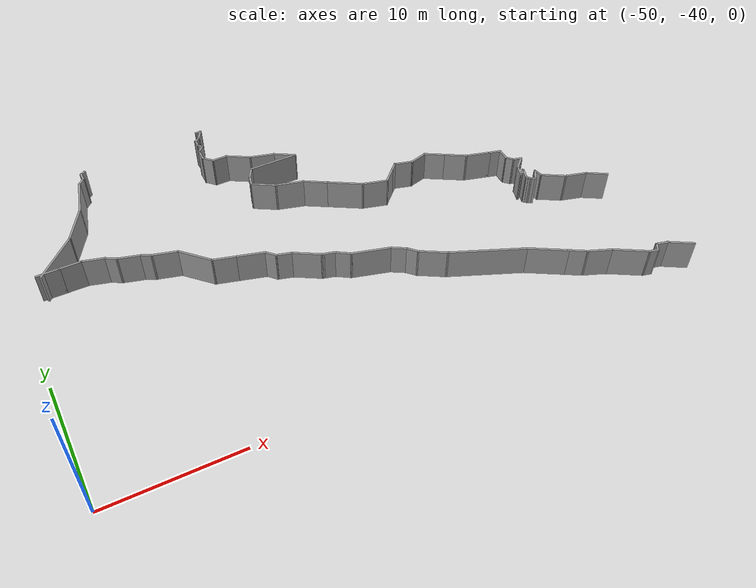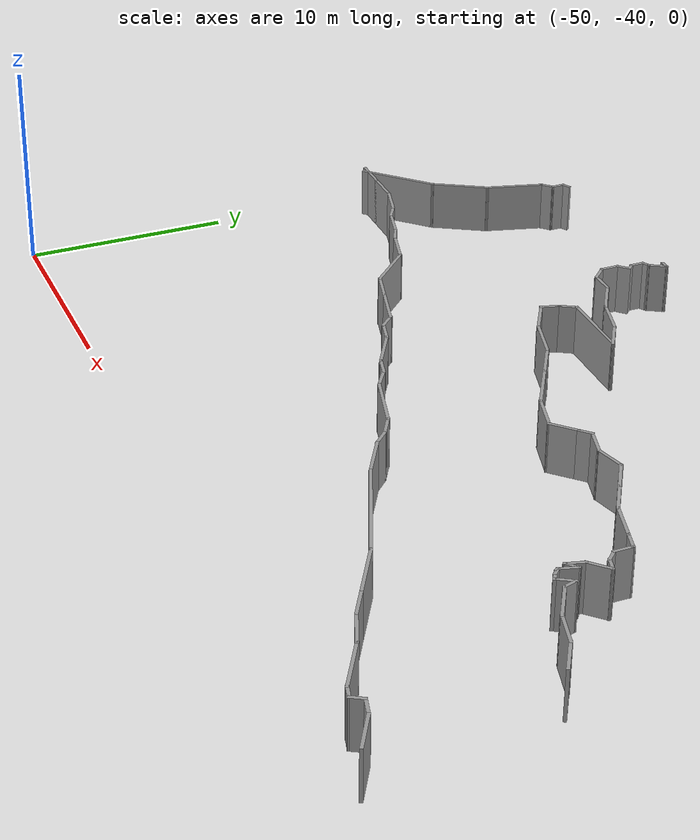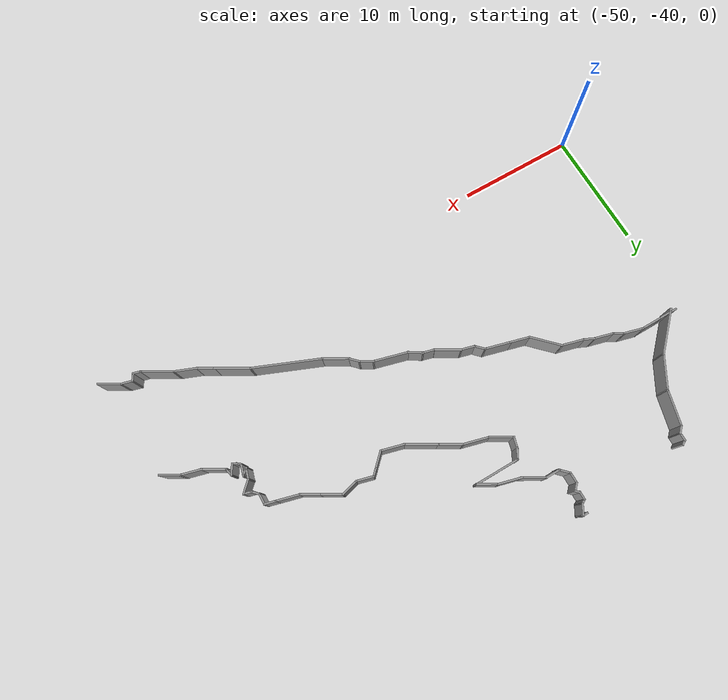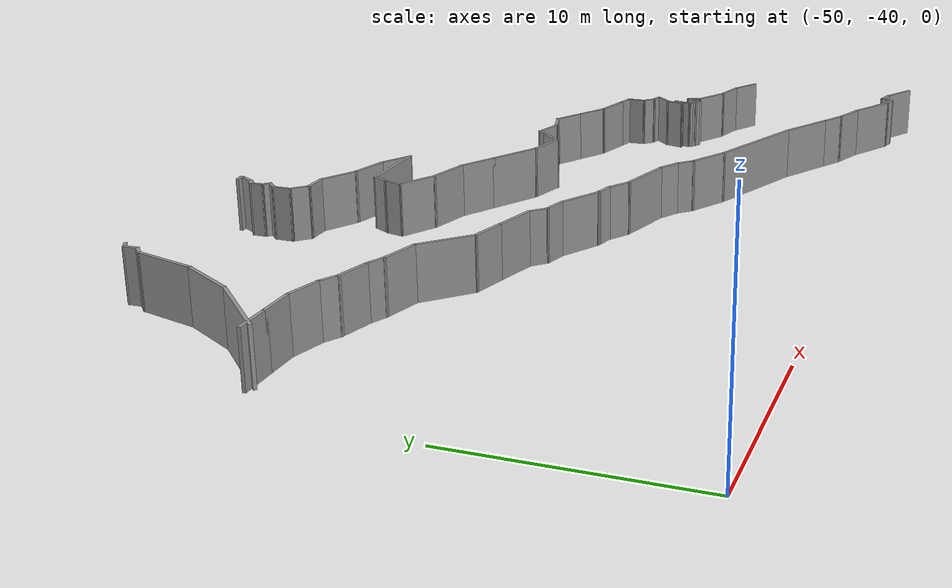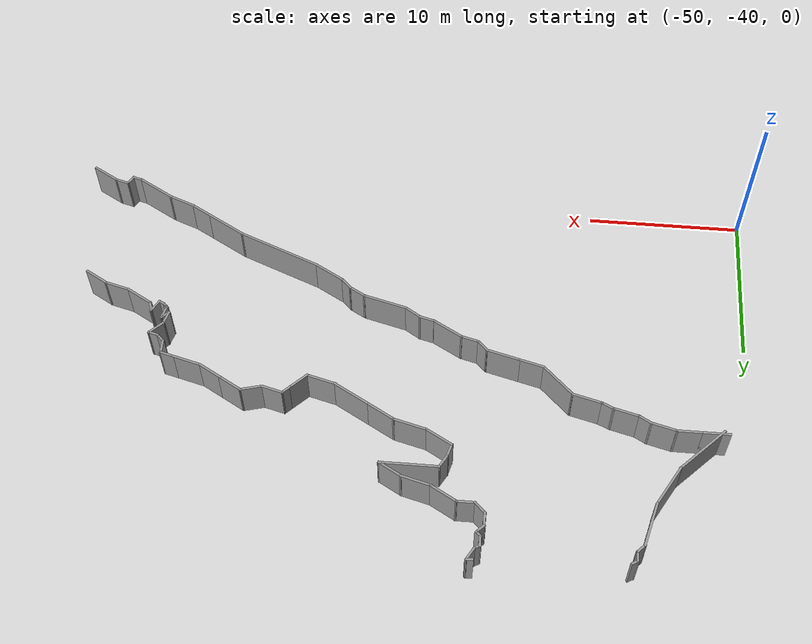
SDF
<sdf version="1.7">
 <model name="office_track1">
  <pose>2.3626 4.43866 0 0 -0 0</pose>
  <link name="Wall_100">
   <collision name="Wall_100_Collision">
    <geometry><box><size>0.75 0.15 2.5</size></box></geometry>
    <pose>0 0 1.25 0 -0 0</pose>
   </collision>
   <visual name="Wall_100_Visual">
    <pose>0 0 1.25 0 -0 0</pose>
    <geometry><box><size>0.75 0.15 2.5</size></box></geometry>
    <material>
     <script><uri>file://media/materials/scripts/gazebo.material</uri><name>Gazebo/Grey</name></script>
     <ambient>1 1 1 1</ambient>
    </material>
    <meta><layer>0</layer></meta>
   </visual>
   <pose>-15.1863 -32.6198 0 0 -0 0.785398</pose>
  </link>
  <link name="Wall_101">
   <collision name="Wall_101_Collision">
    <geometry><box><size>1 0.15 2.5</size></box></geometry>
    <pose>0 0 1.25 0 -0 0</pose>
   </collision>
   <visual name="Wall_101_Visual">
    <pose>0 0 1.25 0 -0 0</pose>
    <geometry><box><size>1 0.15 2.5</size></box></geometry>
    <material>
     <script><uri>file://media/materials/scripts/gazebo.material</uri><name>Gazebo/Grey</name></script>
     <ambient>1 1 1 1</ambient>
    </material>
    <meta><layer>0</layer></meta>
   </visual>
   <pose>-15.0842 -32.8182 0 0 -0 -1.8326</pose>
  </link>
  <link name="Wall_102">
   <collision name="Wall_102_Collision">
    <geometry><box><size>0.25 0.15 2.5</size></box></geometry>
    <pose>0 0 1.25 0 -0 0</pose>
   </collision>
   <visual name="Wall_102_Visual">
    <pose>0 0 1.25 0 -0 0</pose>
    <geometry><box><size>0.25 0.15 2.5</size></box></geometry>
    <material>
     <script><uri>file://media/materials/scripts/gazebo.material</uri><name>Gazebo/Grey</name></script>
     <ambient>1 1 1 1</ambient>
    </material>
    <meta><layer>0</layer></meta>
   </visual>
   <pose>-15.1692 -33.272 0 0 -0 -1.0472</pose>
  </link>
  <link name="Wall_104">
   <collision name="Wall_104_Collision">
    <geometry><box><size>0.5 0.15 2.5</size></box></geometry>
    <pose>0 0 1.25 0 -0 0</pose>
   </collision>
   <visual name="Wall_104_Visual">
    <pose>0 0 1.25 0 -0 0</pose>
    <geometry><box><size>0.5 0.15 2.5</size></box></geometry>
    <material>
     <script><uri>file://media/materials/scripts/gazebo.material</uri><name>Gazebo/Grey</name></script>
     <ambient>1 1 1 1</ambient>
    </material>
    <meta><layer>0</layer></meta>
   </visual>
   <pose>-15.0704 -33.3525 0 0 -0 -0.785398</pose>
  </link>
  <link name="Wall_105">
   <collision name="Wall_105_Collision">
    <geometry><box><size>0.5 0.15 2.5</size></box></geometry>
    <pose>0 0 1.25 0 -0 0</pose>
   </collision>
   <visual name="Wall_105_Visual">
    <pose>0 0 1.25 0 -0 0</pose>
    <geometry><box><size>0.5 0.15 2.5</size></box></geometry>
    <material>
     <script><uri>file://media/materials/scripts/gazebo.material</uri><name>Gazebo/Grey</name></script>
     <ambient>1 1 1 1</ambient>
    </material>
    <meta><layer>0</layer></meta>
   </visual>
   <pose>-14.7951 -33.5637 0 0 -0 -0.523599</pose>
  </link>
  <link name="Wall_106">
   <collision name="Wall_106_Collision">
    <geometry><box><size>1 0.15 2.5</size></box></geometry>
    <pose>0 0 1.25 0 -0 0</pose>
   </collision>
   <visual name="Wall_106_Visual">
    <pose>0 0 1.25 0 -0 0</pose>
    <geometry><box><size>1 0.15 2.5</size></box></geometry>
    <material>
     <script><uri>file://media/materials/scripts/gazebo.material</uri><name>Gazebo/Grey</name></script>
     <ambient>1 1 1 1</ambient>
    </material>
    <meta><layer>0</layer></meta>
   </visual>
   <pose>-14.4311 -33.2832 0 0 -0 1.0472</pose>
  </link>
  <link name="Wall_107">
   <collision name="Wall_107_Collision">
    <geometry><box><size>0.75 0.15 2.5</size></box></geometry>
    <pose>0 0 1.25 0 -0 0</pose>
   </collision>
   <visual name="Wall_107_Visual">
    <pose>0 0 1.25 0 -0 0</pose>
    <geometry><box><size>0.75 0.15 2.5</size></box></geometry>
    <material>
     <script><uri>file://media/materials/scripts/gazebo.material</uri><name>Gazebo/Grey</name></script>
     <ambient>1 1 1 1</ambient>
    </material>
    <meta><layer>0</layer></meta>
   </visual>
   <pose>-14.1409 -33.2049 0 0 -0 -1.309</pose>
  </link>
  <link name="Wall_108">
   <collision name="Wall_108_Collision">
    <geometry><box><size>2 0.15 2.5</size></box></geometry>
    <pose>0 0 1.25 0 -0 0</pose>
   </collision>
   <visual name="Wall_108_Visual">
    <pose>0 0 1.25 0 -0 0</pose>
    <geometry><box><size>2 0.15 2.5</size></box></geometry>
    <material>
     <script><uri>file://media/materials/scripts/gazebo.material</uri><name>Gazebo/Grey</name></script>
     <ambient>1 1 1 1</ambient>
    </material>
    <meta><layer>0</layer></meta>
   </visual>
   <pose>-13.2622 -33.9571 0 0 -0 -0.523599</pose>
  </link>
  <link name="Wall_109">
   <collision name="Wall_109_Collision">
    <geometry><box><size>1.75 0.15 2.5</size></box></geometry>
    <pose>0 0 1.25 0 -0 0</pose>
   </collision>
   <visual name="Wall_109_Visual">
    <pose>0 0 1.25 0 -0 0</pose>
    <geometry><box><size>1.75 0.15 2.5</size></box></geometry>
    <material>
     <script><uri>file://media/materials/scripts/gazebo.material</uri><name>Gazebo/Grey</name></script>
     <ambient>1 1 1 1</ambient>
    </material>
    <meta><layer>0</layer></meta>
   </visual>
   <pose>-11.6884 -34.6267 0 0 -0 -0.261799</pose>
  </link>
  <link name="Wall_110">
   <collision name="Wall_110_Collision">
    <geometry><box><size>1.75 0.15 2.5</size></box></geometry>
    <pose>0 0 1.25 0 -0 0</pose>
   </collision>
   <visual name="Wall_110_Visual">
    <pose>0 0 1.25 0 -0 0</pose>
    <geometry><box><size>1.75 0.15 2.5</size></box></geometry>
    <material>
     <script><uri>file://media/materials/scripts/gazebo.material</uri><name>Gazebo/Grey</name></script>
     <ambient>1 1 1 1</ambient>
    </material>
    <meta><layer>0</layer></meta>
   </visual>
   <pose>-10.2228 -35.2338 0 0 -0 -0.523599</pose>
  </link>
  <link name="Wall_462">
   <collision name="Wall_462_Collision">
    <geometry><box><size>2.75 0.15 2.5</size></box></geometry>
    <pose>0 0 1.25 0 -0 0</pose>
   </collision>
   <visual name="Wall_462_Visual">
    <pose>0 0 1.25 0 -0 0</pose>
    <geometry><box><size>2.75 0.15 2.5</size></box></geometry>
    <material>
     <script><uri>file://media/materials/scripts/gazebo.material</uri><name>Gazebo/Grey</name></script>
     <ambient>1 1 1 1</ambient>
    </material>
    <meta><layer>0</layer></meta>
   </visual>
   <pose>-12.7088 -42.9006 0 0 -0 -0.523599</pose>
  </link>
  <link name="Wall_463">
   <collision name="Wall_463_Collision">
    <geometry><box><size>0.75 0.15 2.5</size></box></geometry>
    <pose>0 0 1.25 0 -0 0</pose>
   </collision>
   <visual name="Wall_463_Visual">
    <pose>0 0 1.25 0 -0 0</pose>
    <geometry><box><size>0.75 0.15 2.5</size></box></geometry>
    <material>
     <script><uri>file://media/materials/scripts/gazebo.material</uri><name>Gazebo/Grey</name></script>
     <ambient>1 1 1 1</ambient>
    </material>
    <meta><layer>0</layer></meta>
   </visual>
   <pose>-11.2932 -43.6283 0 0 -0 -0.261799</pose>
  </link>
  <link name="Wall_464">
   <collision name="Wall_464_Collision">
    <geometry><box><size>0.75 0.15 2.5</size></box></geometry>
    <pose>0 0 1.25 0 -0 0</pose>
   </collision>
   <visual name="Wall_464_Visual">
    <pose>0 0 1.25 0 -0 0</pose>
    <geometry><box><size>0.75 0.15 2.5</size></box></geometry>
    <material>
     <script><uri>file://media/materials/scripts/gazebo.material</uri><name>Gazebo/Grey</name></script>
     <ambient>1 1 1 1</ambient>
    </material>
    <meta><layer>0</layer></meta>
   </visual>
   <pose>-10.8534 -43.4461 0 0 -0 1.0472</pose>
  </link>
  <link name="Wall_465">
   <collision name="Wall_465_Collision">
    <geometry><box><size>1 0.15 2.5</size></box></geometry>
    <pose>0 0 1.25 0 -0 0</pose>
   </collision>
   <visual name="Wall_465_Visual">
    <pose>0 0 1.25 0 -0 0</pose>
    <geometry><box><size>1 0.15 2.5</size></box></geometry>
    <material>
     <script><uri>file://media/materials/scripts/gazebo.material</uri><name>Gazebo/Grey</name></script>
     <ambient>1 1 1 1</ambient>
    </material>
    <meta><layer>0</layer></meta>
   </visual>
   <pose>-10.2929 -43.2963 0 0 -0 -0.261799</pose>
  </link>
  <link name="Wall_466">
   <collision name="Wall_466_Collision">
    <geometry><box><size>2 0.15 2.5</size></box></geometry>
    <pose>0 0 1.25 0 -0 0</pose>
   </collision>
   <visual name="Wall_466_Visual">
    <pose>0 0 1.25 0 -0 0</pose>
    <geometry><box><size>2 0.15 2.5</size></box></geometry>
    <material>
     <script><uri>file://media/materials/scripts/gazebo.material</uri><name>Gazebo/Grey</name></script>
     <ambient>1 1 1 1</ambient>
    </material>
    <meta><layer>0</layer></meta>
   </visual>
   <pose>-9.08131 -43.8688 0 0 -0 -0.523599</pose>
  </link>
  <link name="Wall_471">
   <collision name="Wall_471_Collision">
    <geometry><box><size>3 0.15 2.5</size></box></geometry>
    <pose>0 0 1.25 0 -0 0</pose>
   </collision>
   <visual name="Wall_471_Visual">
    <pose>0 0 1.25 0 -0 0</pose>
    <geometry><box><size>3 0.15 2.5</size></box></geometry>
    <material>
     <script><uri>file://media/materials/scripts/gazebo.material</uri><name>Gazebo/Grey</name></script>
     <ambient>1 1 1 1</ambient>
    </material>
    <meta><layer>0</layer></meta>
   </visual>
   <pose>-17.8826 -40.2172 0 0 -0 -0.523599</pose>
  </link>
  <link name="Wall_472">
   <collision name="Wall_472_Collision">
    <geometry><box><size>1.5 0.15 2.5</size></box></geometry>
    <pose>0 0 1.25 0 -0 0</pose>
   </collision>
   <visual name="Wall_472_Visual">
    <pose>0 0 1.25 0 -0 0</pose>
    <geometry><box><size>1.5 0.15 2.5</size></box></geometry>
    <material>
     <script><uri>file://media/materials/scripts/gazebo.material</uri><name>Gazebo/Grey</name></script>
     <ambient>1 1 1 1</ambient>
    </material>
    <meta><layer>0</layer></meta>
   </visual>
   <pose>-16.0639 -41.2672 0 0 -0 -0.523599</pose>
  </link>
  <link name="Wall_473">
   <collision name="Wall_473_Collision">
    <geometry><box><size>1.91699 0.15 2.5</size></box></geometry>
    <pose>0 0 1.25 0 -0 0</pose>
   </collision>
   <visual name="Wall_473_Visual">
    <pose>0 0 1.25 0 -0 0</pose>
    <geometry><box><size>1.91699 0.15 2.5</size></box></geometry>
    <material>
     <script><uri>file://media/materials/scripts/gazebo.material</uri><name>Gazebo/Grey</name></script>
     <ambient>1 1 1 1</ambient>
    </material>
    <meta><layer>0</layer></meta>
   </visual>
   <pose>-14.657 -41.9276 0 0 -0 -0.374234</pose>
  </link>
  <link name="Wall_475">
   <collision name="Wall_475_Collision">
    <geometry><box><size>3 0.15 2.5</size></box></geometry>
    <pose>0 0 1.25 0 -0 0</pose>
   </collision>
   <visual name="Wall_475_Visual">
    <pose>0 0 1.25 0 -0 0</pose>
    <geometry><box><size>3 0.15 2.5</size></box></geometry>
    <material>
     <script><uri>file://media/materials/scripts/gazebo.material</uri><name>Gazebo/Grey</name></script>
     <ambient>1 1 1 1</ambient>
    </material>
    <meta><layer>0</layer></meta>
   </visual>
   <pose>-29.0738 -34.8014 0 0 -0 -0.261799</pose>
  </link>
  <link name="Wall_476">
   <collision name="Wall_476_Collision">
    <geometry><box><size>1.25 0.15 2.5</size></box></geometry>
    <pose>0 0 1.25 0 -0 0</pose>
   </collision>
   <visual name="Wall_476_Visual">
    <pose>0 0 1.25 0 -0 0</pose>
    <geometry><box><size>1.25 0.15 2.5</size></box></geometry>
    <material>
     <script><uri>file://media/materials/scripts/gazebo.material</uri><name>Gazebo/Grey</name></script>
     <ambient>1 1 1 1</ambient>
    </material>
    <meta><layer>0</layer></meta>
   </visual>
   <pose>-27.221 -35.4452 0 0 -0 -0.523599</pose>
  </link>
  <link name="Wall_477">
   <collision name="Wall_477_Collision">
    <geometry><box><size>1 0.15 2.5</size></box></geometry>
    <pose>0 0 1.25 0 -0 0</pose>
   </collision>
   <visual name="Wall_477_Visual">
    <pose>0 0 1.25 0 -0 0</pose>
    <geometry><box><size>1 0.15 2.5</size></box></geometry>
    <material>
     <script><uri>file://media/materials/scripts/gazebo.material</uri><name>Gazebo/Grey</name></script>
     <ambient>1 1 1 1</ambient>
    </material>
    <meta><layer>0</layer></meta>
   </visual>
   <pose>-26.4442 -36.0207 0 0 -0 -0.785398</pose>
  </link>
  <link name="Wall_478">
   <collision name="Wall_478_Collision">
    <geometry><box><size>2.25 0.15 2.5</size></box></geometry>
    <pose>0 0 1.25 0 -0 0</pose>
   </collision>
   <visual name="Wall_478_Visual">
    <pose>0 0 1.25 0 -0 0</pose>
    <geometry><box><size>2.25 0.15 2.5</size></box></geometry>
    <material>
     <script><uri>file://media/materials/scripts/gazebo.material</uri><name>Gazebo/Grey</name></script>
     <ambient>1 1 1 1</ambient>
    </material>
    <meta><layer>0</layer></meta>
   </visual>
   <pose>-25.2343 -36.8462 0 0 -0 -0.523599</pose>
  </link>
  <link name="Wall_479">
   <collision name="Wall_479_Collision">
    <geometry><box><size>5.77836 0.15 2.5</size></box></geometry>
    <pose>0 0 1.25 0 -0 0</pose>
   </collision>
   <visual name="Wall_479_Visual">
    <pose>0 0 1.25 0 -0 0</pose>
    <geometry><box><size>5.77836 0.15 2.5</size></box></geometry>
    <material>
     <script><uri>file://media/materials/scripts/gazebo.material</uri><name>Gazebo/Grey</name></script>
     <ambient>1 1 1 1</ambient>
    </material>
    <meta><layer>0</layer></meta>
   </visual>
   <pose>-21.7208 -38.438 0 0 -0 -0.388772</pose>
  </link>
  <link name="Wall_481">
   <collision name="Wall_481_Collision">
    <geometry><box><size>2 0.15 2.5</size></box></geometry>
    <pose>0 0 1.25 0 -0 0</pose>
   </collision>
   <visual name="Wall_481_Visual">
    <pose>0 0 1.25 0 -0 0</pose>
    <geometry><box><size>2 0.15 2.5</size></box></geometry>
    <material>
     <script><uri>file://media/materials/scripts/gazebo.material</uri><name>Gazebo/Grey</name></script>
     <ambient>1 1 1 1</ambient>
    </material>
    <meta><layer>0</layer></meta>
   </visual>
   <pose>-42.1146 -28.6029 0 0 -0 -0.261799</pose>
  </link>
  <link name="Wall_482">
   <collision name="Wall_482_Collision">
    <geometry><box><size>2.75 0.15 2.5</size></box></geometry>
    <pose>0 0 1.25 0 -0 0</pose>
   </collision>
   <visual name="Wall_482_Visual">
    <pose>0 0 1.25 0 -0 0</pose>
    <geometry><box><size>2.75 0.15 2.5</size></box></geometry>
    <material>
     <script><uri>file://media/materials/scripts/gazebo.material</uri><name>Gazebo/Grey</name></script>
     <ambient>1 1 1 1</ambient>
    </material>
    <meta><layer>0</layer></meta>
   </visual>
   <pose>-40.3019 -29.7616 0 0 -0 -0.785398</pose>
  </link>
  <link name="Wall_483">
   <collision name="Wall_483_Collision">
    <geometry><box><size>1.75 0.15 2.5</size></box></geometry>
    <pose>0 0 1.25 0 -0 0</pose>
   </collision>
   <visual name="Wall_483_Visual">
    <pose>0 0 1.25 0 -0 0</pose>
    <geometry><box><size>1.75 0.15 2.5</size></box></geometry>
    <material>
     <script><uri>file://media/materials/scripts/gazebo.material</uri><name>Gazebo/Grey</name></script>
     <ambient>1 1 1 1</ambient>
    </material>
    <meta><layer>0</layer></meta>
   </visual>
   <pose>-38.6099 -30.8879 0 0 -0 -0.261799</pose>
  </link>
  <link name="Wall_484">
   <collision name="Wall_484_Collision">
    <geometry><box><size>2.25 0.15 2.5</size></box></geometry>
    <pose>0 0 1.25 0 -0 0</pose>
   </collision>
   <visual name="Wall_484_Visual">
    <pose>0 0 1.25 0 -0 0</pose>
    <geometry><box><size>2.25 0.15 2.5</size></box></geometry>
    <material>
     <script><uri>file://media/materials/scripts/gazebo.material</uri><name>Gazebo/Grey</name></script>
     <ambient>1 1 1 1</ambient>
    </material>
    <meta><layer>0</layer></meta>
   </visual>
   <pose>-36.8229 -31.3667 0 0 -0 -0.261799</pose>
  </link>
  <link name="Wall_485">
   <collision name="Wall_485_Collision">
    <geometry><box><size>1 0.15 2.5</size></box></geometry>
    <pose>0 0 1.25 0 -0 0</pose>
   </collision>
   <visual name="Wall_485_Visual">
    <pose>0 0 1.25 0 -0 0</pose>
    <geometry><box><size>1 0.15 2.5</size></box></geometry>
    <material>
     <script><uri>file://media/materials/scripts/gazebo.material</uri><name>Gazebo/Grey</name></script>
     <ambient>1 1 1 1</ambient>
    </material>
    <meta><layer>0</layer></meta>
   </visual>
   <pose>-35.5082 -31.9389 0 0 -0 -0.785398</pose>
  </link>
  <link name="Wall_486">
   <collision name="Wall_486_Collision">
    <geometry><box><size>1.25 0.15 2.5</size></box></geometry>
    <pose>0 0 1.25 0 -0 0</pose>
   </collision>
   <visual name="Wall_486_Visual">
    <pose>0 0 1.25 0 -0 0</pose>
    <geometry><box><size>1.25 0.15 2.5</size></box></geometry>
    <material>
     <script><uri>file://media/materials/scripts/gazebo.material</uri><name>Gazebo/Grey</name></script>
     <ambient>1 1 1 1</ambient>
    </material>
    <meta><layer>0</layer></meta>
   </visual>
   <pose>-34.6764 -32.3818 0 0 -0 -0.261799</pose>
  </link>
  <link name="Wall_487">
   <collision name="Wall_487_Collision">
    <geometry><box><size>2.25 0.15 2.5</size></box></geometry>
    <pose>0 0 1.25 0 -0 0</pose>
   </collision>
   <visual name="Wall_487_Visual">
    <pose>0 0 1.25 0 -0 0</pose>
    <geometry><box><size>2.25 0.15 2.5</size></box></geometry>
    <material>
     <script><uri>file://media/materials/scripts/gazebo.material</uri><name>Gazebo/Grey</name></script>
     <ambient>1 1 1 1</ambient>
    </material>
    <meta><layer>0</layer></meta>
   </visual>
   <pose>-33.2358 -33.0492 0 0 -0 -0.523599</pose>
  </link>
  <link name="Wall_488">
   <collision name="Wall_488_Collision">
    <geometry><box><size>0.25 0.15 2.5</size></box></geometry>
    <pose>0 0 1.25 0 -0 0</pose>
   </collision>
   <visual name="Wall_488_Visual">
    <pose>0 0 1.25 0 -0 0</pose>
    <geometry><box><size>0.25 0.15 2.5</size></box></geometry>
    <material>
     <script><uri>file://media/materials/scripts/gazebo.material</uri><name>Gazebo/Grey</name></script>
     <ambient>1 1 1 1</ambient>
    </material>
    <meta><layer>0</layer></meta>
   </visual>
   <pose>-32.2782 -33.5871 0 0 -0 -0.261799</pose>
  </link>
  <link name="Wall_489">
   <collision name="Wall_489_Collision">
    <geometry><box><size>1 0.15 2.5</size></box></geometry>
    <pose>0 0 1.25 0 -0 0</pose>
   </collision>
   <visual name="Wall_489_Visual">
    <pose>0 0 1.25 0 -0 0</pose>
    <geometry><box><size>1 0.15 2.5</size></box></geometry>
    <material>
     <script><uri>file://media/materials/scripts/gazebo.material</uri><name>Gazebo/Grey</name></script>
     <ambient>1 1 1 1</ambient>
    </material>
    <meta><layer>0</layer></meta>
   </visual>
   <pose>-31.8194 -33.71 0 0 -0 -0.261799</pose>
  </link>
  <link name="Wall_490">
   <collision name="Wall_490_Collision">
    <geometry><box><size>1.28763 0.15 2.5</size></box></geometry>
    <pose>0 0 1.25 0 -0 0</pose>
   </collision>
   <visual name="Wall_490_Visual">
    <pose>0 0 1.25 0 -0 0</pose>
    <geometry><box><size>1.28763 0.15 2.5</size></box></geometry>
    <material>
     <script><uri>file://media/materials/scripts/gazebo.material</uri><name>Gazebo/Grey</name></script>
     <ambient>1 1 1 1</ambient>
    </material>
    <meta><layer>0</layer></meta>
   </visual>
   <pose>-30.9295 -34.1263 0 0 -0 -0.568549</pose>
  </link>
  <link name="Wall_492">
   <collision name="Wall_492_Collision">
    <geometry><box><size>1.75 0.15 2.5</size></box></geometry>
    <pose>0 0 1.25 0 -0 0</pose>
   </collision>
   <visual name="Wall_492_Visual">
    <pose>0 0 1.25 0 -0 0</pose>
    <geometry><box><size>1.75 0.15 2.5</size></box></geometry>
    <material>
     <script><uri>file://media/materials/scripts/gazebo.material</uri><name>Gazebo/Grey</name></script>
     <ambient>1 1 1 1</ambient>
    </material>
    <meta><layer>0</layer></meta>
   </visual>
   <pose>-49.9737 -26.7719 0 0 -0 0</pose>
  </link>
  <link name="Wall_493">
   <collision name="Wall_493_Collision">
    <geometry><box><size>1.75 0.15 2.5</size></box></geometry>
    <pose>0 0 1.25 0 -0 0</pose>
   </collision>
   <visual name="Wall_493_Visual">
    <pose>0 0 1.25 0 -0 0</pose>
    <geometry><box><size>1.75 0.15 2.5</size></box></geometry>
    <material>
     <script><uri>file://media/materials/scripts/gazebo.material</uri><name>Gazebo/Grey</name></script>
     <ambient>1 1 1 1</ambient>
    </material>
    <meta><layer>0</layer></meta>
   </visual>
   <pose>-48.3737 -26.7719 0 0 -0 0</pose>
  </link>
  <link name="Wall_494">
   <collision name="Wall_494_Collision">
    <geometry><box><size>1.75 0.15 2.5</size></box></geometry>
    <pose>0 0 1.25 0 -0 0</pose>
   </collision>
   <visual name="Wall_494_Visual">
    <pose>0 0 1.25 0 -0 0</pose>
    <geometry><box><size>1.75 0.15 2.5</size></box></geometry>
    <material>
     <script><uri>file://media/materials/scripts/gazebo.material</uri><name>Gazebo/Grey</name></script>
     <ambient>1 1 1 1</ambient>
    </material>
    <meta><layer>0</layer></meta>
   </visual>
   <pose>-46.8009 -26.979 0 0 -0 -0.261799</pose>
  </link>
  <link name="Wall_495">
   <collision name="Wall_495_Collision">
    <geometry><box><size>1 0.15 2.5</size></box></geometry>
    <pose>0 0 1.25 0 -0 0</pose>
   </collision>
   <visual name="Wall_495_Visual">
    <pose>0 0 1.25 0 -0 0</pose>
    <geometry><box><size>1 0.15 2.5</size></box></geometry>
    <material>
     <script><uri>file://media/materials/scripts/gazebo.material</uri><name>Gazebo/Grey</name></script>
     <ambient>1 1 1 1</ambient>
    </material>
    <meta><layer>0</layer></meta>
   </visual>
   <pose>-45.6601 -27.3985 0 0 -0 -0.523599</pose>
  </link>
  <link name="Wall_496">
   <collision name="Wall_496_Collision">
    <geometry><box><size>1.75 0.15 2.5</size></box></geometry>
    <pose>0 0 1.25 0 -0 0</pose>
   </collision>
   <visual name="Wall_496_Visual">
    <pose>0 0 1.25 0 -0 0</pose>
    <geometry><box><size>1.75 0.15 2.5</size></box></geometry>
    <material>
     <script><uri>file://media/materials/scripts/gazebo.material</uri><name>Gazebo/Grey</name></script>
     <ambient>1 1 1 1</ambient>
    </material>
    <meta><layer>0</layer></meta>
   </visual>
   <pose>-44.5193 -27.8181 0 0 -0 -0.261799</pose>
  </link>
  <link name="Wall_497">
   <collision name="Wall_497_Collision">
    <geometry><box><size>0.962333 0.15 2.5</size></box></geometry>
    <pose>0 0 1.25 0 -0 0</pose>
   </collision>
   <visual name="Wall_497_Visual">
    <pose>0 0 1.25 0 -0 0</pose>
    <geometry><box><size>0.962333 0.15 2.5</size></box></geometry>
    <material>
     <script><uri>file://media/materials/scripts/gazebo.material</uri><name>Gazebo/Grey</name></script>
     <ambient>1 1 1 1</ambient>
    </material>
    <meta><layer>0</layer></meta>
   </visual>
   <pose>-43.3773 -28.1943 0 0 -0 -0.429644</pose>
  </link>
  <link name="Wall_499">
   <collision name="Wall_499_Collision">
    <geometry><box><size>4 0.15 2.5</size></box></geometry>
    <pose>0 0 1.25 0 -0 0</pose>
   </collision>
   <visual name="Wall_499_Visual">
    <pose>0 0 1.25 0 -0 0</pose>
    <geometry><box><size>4 0.15 2.5</size></box></geometry>
    <material>
     <script><uri>file://media/materials/scripts/gazebo.material</uri><name>Gazebo/Grey</name></script>
     <ambient>1 1 1 1</ambient>
    </material>
    <meta><layer>0</layer></meta>
   </visual>
   <pose>-49.097 -25.6018 0 0 -0 0.785398</pose>
  </link>
  <link name="Wall_500">
   <collision name="Wall_500_Collision">
    <geometry><box><size>3 0.15 2.5</size></box></geometry>
    <pose>0 0 1.25 0 -0 0</pose>
   </collision>
   <visual name="Wall_500_Visual">
    <pose>0 0 1.25 0 -0 0</pose>
    <geometry><box><size>3 0.15 2.5</size></box></geometry>
    <material>
     <script><uri>file://media/materials/scripts/gazebo.material</uri><name>Gazebo/Grey</name></script>
     <ambient>1 1 1 1</ambient>
    </material>
    <meta><layer>0</layer></meta>
   </visual>
   <pose>-47.0233 -23.0065 0 0 -0 1.0472</pose>
  </link>
  <link name="Wall_501">
   <collision name="Wall_501_Collision">
    <geometry><box><size>3 0.15 2.5</size></box></geometry>
    <pose>0 0 1.25 0 -0 0</pose>
   </collision>
   <visual name="Wall_501_Visual">
    <pose>0 0 1.25 0 -0 0</pose>
    <geometry><box><size>3 0.15 2.5</size></box></geometry>
    <material>
     <script><uri>file://media/materials/scripts/gazebo.material</uri><name>Gazebo/Grey</name></script>
     <ambient>1 1 1 1</ambient>
    </material>
    <meta><layer>0</layer></meta>
   </visual>
   <pose>-45.942 -20.396 0 0 -0 1.309</pose>
  </link>
  <link name="Wall_502">
   <collision name="Wall_502_Collision">
    <geometry><box><size>0.75 0.15 2.5</size></box></geometry>
    <pose>0 0 1.25 0 -0 0</pose>
   </collision>
   <visual name="Wall_502_Visual">
    <pose>0 0 1.25 0 -0 0</pose>
    <geometry><box><size>0.75 0.15 2.5</size></box></geometry>
    <material>
     <script><uri>file://media/materials/scripts/gazebo.material</uri><name>Gazebo/Grey</name></script>
     <ambient>1 1 1 1</ambient>
    </material>
    <meta><layer>0</layer></meta>
   </visual>
   <pose>-45.3611 -18.8074 0 0 -0 0.785398</pose>
  </link>
  <link name="Wall_503">
   <collision name="Wall_503_Collision">
    <geometry><box><size>0.75 0.15 2.5</size></box></geometry>
    <pose>0 0 1.25 0 -0 0</pose>
   </collision>
   <visual name="Wall_503_Visual">
    <pose>0 0 1.25 0 -0 0</pose>
    <geometry><box><size>0.75 0.15 2.5</size></box></geometry>
    <material>
     <script><uri>file://media/materials/scripts/gazebo.material</uri><name>Gazebo/Grey</name></script>
     <ambient>1 1 1 1</ambient>
    </material>
    <meta><layer>0</layer></meta>
   </visual>
   <pose>-45.1489 -18.2953 0 0 -0 1.5708</pose>
  </link>
  <link name="Wall_504">
   <collision name="Wall_504_Collision">
    <geometry><box><size>0.5 0.15 2.5</size></box></geometry>
    <pose>0 0 1.25 0 -0 0</pose>
   </collision>
   <visual name="Wall_504_Visual">
    <pose>0 0 1.25 0 -0 0</pose>
    <geometry><box><size>0.5 0.15 2.5</size></box></geometry>
    <material>
     <script><uri>file://media/materials/scripts/gazebo.material</uri><name>Gazebo/Grey</name></script>
     <ambient>1 1 1 1</ambient>
    </material>
    <meta><layer>0</layer></meta>
   </visual>
   <pose>-44.9974 -17.9078 0 0 -0 0.523599</pose>
  </link>
  <link name="Wall_64">
   <collision name="Wall_64_Collision">
    <geometry><box><size>0.5 0.15 2.5</size></box></geometry>
    <pose>0 0 1.25 0 -0 0</pose>
   </collision>
   <visual name="Wall_64_Visual">
    <pose>0 0 1.25 0 -0 0</pose>
    <geometry><box><size>0.5 0.15 2.5</size></box></geometry>
    <material>
     <script><uri>file://media/materials/scripts/gazebo.material</uri><name>Gazebo/Grey</name></script>
     <ambient>1 1 1 1</ambient>
    </material>
    <meta><layer>0</layer></meta>
   </visual>
   <pose>-35.5429 -17.3164 0 0 -0 0</pose>
  </link>
  <link name="Wall_66">
   <collision name="Wall_66_Collision">
    <geometry><box><size>1 0.15 2.5</size></box></geometry>
    <pose>0 0 1.25 0 -0 0</pose>
   </collision>
   <visual name="Wall_66_Visual">
    <pose>0 0 1.25 0 -0 0</pose>
    <geometry><box><size>1 0.15 2.5</size></box></geometry>
    <material>
     <script><uri>file://media/materials/scripts/gazebo.material</uri><name>Gazebo/Grey</name></script>
     <ambient>1 1 1 1</ambient>
    </material>
    <meta><layer>0</layer></meta>
   </visual>
   <pose>-35.5804 -17.6844 0 0 -0 -2.0944</pose>
  </link>
  <link name="Wall_67">
   <collision name="Wall_67_Collision">
    <geometry><box><size>0.5 0.15 2.5</size></box></geometry>
    <pose>0 0 1.25 0 -0 0</pose>
   </collision>
   <visual name="Wall_67_Visual">
    <pose>0 0 1.25 0 -0 0</pose>
    <geometry><box><size>0.5 0.15 2.5</size></box></geometry>
    <material>
     <script><uri>file://media/materials/scripts/gazebo.material</uri><name>Gazebo/Grey</name></script>
     <ambient>1 1 1 1</ambient>
    </material>
    <meta><layer>0</layer></meta>
   </visual>
   <pose>-35.9444 -18.14 0 0 -0 -2.61799</pose>
  </link>
  <link name="Wall_68">
   <collision name="Wall_68_Collision">
    <geometry><box><size>0.75 0.15 2.5</size></box></geometry>
    <pose>0 0 1.25 0 -0 0</pose>
   </collision>
   <visual name="Wall_68_Visual">
    <pose>0 0 1.25 0 -0 0</pose>
    <geometry><box><size>0.75 0.15 2.5</size></box></geometry>
    <material>
     <script><uri>file://media/materials/scripts/gazebo.material</uri><name>Gazebo/Grey</name></script>
     <ambient>1 1 1 1</ambient>
    </material>
    <meta><layer>0</layer></meta>
   </visual>
   <pose>-36.096 -18.5275 0 0 -0 -1.5708</pose>
  </link>
  <link name="Wall_69">
   <collision name="Wall_69_Collision">
    <geometry><box><size>0.5 0.15 2.5</size></box></geometry>
    <pose>0 0 1.25 0 -0 0</pose>
   </collision>
   <visual name="Wall_69_Visual">
    <pose>0 0 1.25 0 -0 0</pose>
    <geometry><box><size>0.5 0.15 2.5</size></box></geometry>
    <material>
     <script><uri>file://media/materials/scripts/gazebo.material</uri><name>Gazebo/Grey</name></script>
     <ambient>1 1 1 1</ambient>
    </material>
    <meta><layer>0</layer></meta>
   </visual>
   <pose>-35.9722 -18.9512 0 0 -0 -0.785398</pose>
  </link>
  <link name="Wall_70">
   <collision name="Wall_70_Collision">
    <geometry><box><size>0.75 0.15 2.5</size></box></geometry>
    <pose>0 0 1.25 0 -0 0</pose>
   </collision>
   <visual name="Wall_70_Visual">
    <pose>0 0 1.25 0 -0 0</pose>
    <geometry><box><size>0.75 0.15 2.5</size></box></geometry>
    <material>
     <script><uri>file://media/materials/scripts/gazebo.material</uri><name>Gazebo/Grey</name></script>
     <ambient>1 1 1 1</ambient>
    </material>
    <meta><layer>0</layer></meta>
   </visual>
   <pose>-36.0606 -19.2871 0 0 -0 -2.35619</pose>
  </link>
  <link name="Wall_71">
   <collision name="Wall_71_Collision">
    <geometry><box><size>1 0.15 2.5</size></box></geometry>
    <pose>0 0 1.25 0 -0 0</pose>
   </collision>
   <visual name="Wall_71_Visual">
    <pose>0 0 1.25 0 -0 0</pose>
    <geometry><box><size>1 0.15 2.5</size></box></geometry>
    <material>
     <script><uri>file://media/materials/scripts/gazebo.material</uri><name>Gazebo/Grey</name></script>
     <ambient>1 1 1 1</ambient>
    </material>
    <meta><layer>0</layer></meta>
   </visual>
   <pose>-36.2727 -19.9242 0 0 -0 -1.5708</pose>
  </link>
  <link name="Wall_72">
   <collision name="Wall_72_Collision">
    <geometry><box><size>1 0.15 2.5</size></box></geometry>
    <pose>0 0 1.25 0 -0 0</pose>
   </collision>
   <visual name="Wall_72_Visual">
    <pose>0 0 1.25 0 -0 0</pose>
    <geometry><box><size>1 0.15 2.5</size></box></geometry>
    <material>
     <script><uri>file://media/materials/scripts/gazebo.material</uri><name>Gazebo/Grey</name></script>
     <ambient>1 1 1 1</ambient>
    </material>
    <meta><layer>0</layer></meta>
   </visual>
   <pose>-35.9722 -20.6498 0 0 -0 -0.785398</pose>
  </link>
  <link name="Wall_73">
   <collision name="Wall_73_Collision">
    <geometry><box><size>1.25 0.15 2.5</size></box></geometry>
    <pose>0 0 1.25 0 -0 0</pose>
   </collision>
   <visual name="Wall_73_Visual">
    <pose>0 0 1.25 0 -0 0</pose>
    <geometry><box><size>1.25 0.15 2.5</size></box></geometry>
    <material>
     <script><uri>file://media/materials/scripts/gazebo.material</uri><name>Gazebo/Grey</name></script>
     <ambient>1 1 1 1</ambient>
    </material>
    <meta><layer>0</layer></meta>
   </visual>
   <pose>-35.1217 -20.9503 0 0 -0 0</pose>
  </link>
  <link name="Wall_74">
   <collision name="Wall_74_Collision">
    <geometry><box><size>2 0.15 2.5</size></box></geometry>
    <pose>0 0 1.25 0 -0 0</pose>
   </collision>
   <visual name="Wall_74_Visual">
    <pose>0 0 1.25 0 -0 0</pose>
    <geometry><box><size>2 0.15 2.5</size></box></geometry>
    <material>
     <script><uri>file://media/materials/scripts/gazebo.material</uri><name>Gazebo/Grey</name></script>
     <ambient>1 1 1 1</ambient>
    </material>
    <meta><layer>0</layer></meta>
   </visual>
   <pose>-33.7706 -21.4128 0 0 -0 -0.523599</pose>
  </link>
  <link name="Wall_75">
   <collision name="Wall_75_Collision">
    <geometry><box><size>2 0.15 2.5</size></box></geometry>
    <pose>0 0 1.25 0 -0 0</pose>
   </collision>
   <visual name="Wall_75_Visual">
    <pose>0 0 1.25 0 -0 0</pose>
    <geometry><box><size>2 0.15 2.5</size></box></geometry>
    <material>
     <script><uri>file://media/materials/scripts/gazebo.material</uri><name>Gazebo/Grey</name></script>
     <ambient>1 1 1 1</ambient>
    </material>
    <meta><layer>0</layer></meta>
   </visual>
   <pose>-32.0761 -22.1147 0 0 -0 -0.261799</pose>
  </link>
  <link name="Wall_76">
   <collision name="Wall_76_Collision">
    <geometry><box><size>1.75 0.15 2.5</size></box></geometry>
    <pose>0 0 1.25 0 -0 0</pose>
   </collision>
   <visual name="Wall_76_Visual">
    <pose>0 0 1.25 0 -0 0</pose>
    <geometry><box><size>1.75 0.15 2.5</size></box></geometry>
    <material>
     <script><uri>file://media/materials/scripts/gazebo.material</uri><name>Gazebo/Grey</name></script>
     <ambient>1 1 1 1</ambient>
    </material>
    <meta><layer>0</layer></meta>
   </visual>
   <pose>-30.4898 -22.7541 0 0 -0 -0.523599</pose>
  </link>
  <link name="Wall_78">
   <collision name="Wall_78_Collision">
    <geometry><box><size>3.75 0.15 2.5</size></box></geometry>
    <pose>0 0 1.25 0 -0 0</pose>
   </collision>
   <visual name="Wall_78_Visual">
    <pose>0 0 1.25 0 -0 0</pose>
    <geometry><box><size>3.75 0.15 2.5</size></box></geometry>
    <material>
     <script><uri>file://media/materials/scripts/gazebo.material</uri><name>Gazebo/Grey</name></script>
     <ambient>1 1 1 1</ambient>
    </material>
    <meta><layer>0</layer></meta>
   </visual>
   <pose>-31.5969 -23.1541 0 0 -0 3.14159</pose>
  </link>
  <link name="Wall_79">
   <collision name="Wall_79_Collision">
    <geometry><box><size>1 0.15 2.5</size></box></geometry>
    <pose>0 0 1.25 0 -0 0</pose>
   </collision>
   <visual name="Wall_79_Visual">
    <pose>0 0 1.25 0 -0 0</pose>
    <geometry><box><size>1 0.15 2.5</size></box></geometry>
    <material>
     <script><uri>file://media/materials/scripts/gazebo.material</uri><name>Gazebo/Grey</name></script>
     <ambient>1 1 1 1</ambient>
    </material>
    <meta><layer>0</layer></meta>
   </visual>
   <pose>-33.6094 -23.5222 0 0 -0 -2.0944</pose>
  </link>
  <link name="Wall_80">
   <collision name="Wall_80_Collision">
    <geometry><box><size>1 0.15 2.5</size></box></geometry>
    <pose>0 0 1.25 0 -0 0</pose>
   </collision>
   <visual name="Wall_80_Visual">
    <pose>0 0 1.25 0 -0 0</pose>
    <geometry><box><size>1 0.15 2.5</size></box></geometry>
    <material>
     <script><uri>file://media/materials/scripts/gazebo.material</uri><name>Gazebo/Grey</name></script>
     <ambient>1 1 1 1</ambient>
    </material>
    <meta><layer>0</layer></meta>
   </visual>
   <pose>-33.9319 -24.3007 0 0 -0 -1.8326</pose>
  </link>
  <link name="Wall_81">
   <collision name="Wall_81_Collision">
    <geometry><box><size>2 0.15 2.5</size></box></geometry>
    <pose>0 0 1.25 0 -0 0</pose>
   </collision>
   <visual name="Wall_81_Visual">
    <pose>0 0 1.25 0 -0 0</pose>
    <geometry><box><size>2 0.15 2.5</size></box></geometry>
    <material>
     <script><uri>file://media/materials/scripts/gazebo.material</uri><name>Gazebo/Grey</name></script>
     <ambient>1 1 1 1</ambient>
    </material>
    <meta><layer>0</layer></meta>
   </visual>
   <pose>-33.2409 -25.1738 0 0 -0 -0.523599</pose>
  </link>
  <link name="Wall_82">
   <collision name="Wall_82_Collision">
    <geometry><box><size>2.25 0.15 2.5</size></box></geometry>
    <pose>0 0 1.25 0 -0 0</pose>
   </collision>
   <visual name="Wall_82_Visual">
    <pose>0 0 1.25 0 -0 0</pose>
    <geometry><box><size>2.25 0.15 2.5</size></box></geometry>
    <material>
     <script><uri>file://media/materials/scripts/gazebo.material</uri><name>Gazebo/Grey</name></script>
     <ambient>1 1 1 1</ambient>
    </material>
    <meta><layer>0</layer></meta>
   </visual>
   <pose>-31.4256 -25.908 0 0 -0 -0.261799</pose>
  </link>
  <link name="Wall_83">
   <collision name="Wall_83_Collision">
    <geometry><box><size>2 0.15 2.5</size></box></geometry>
    <pose>0 0 1.25 0 -0 0</pose>
   </collision>
   <visual name="Wall_83_Visual">
    <pose>0 0 1.25 0 -0 0</pose>
    <geometry><box><size>2 0.15 2.5</size></box></geometry>
    <material>
     <script><uri>file://media/materials/scripts/gazebo.material</uri><name>Gazebo/Grey</name></script>
     <ambient>1 1 1 1</ambient>
    </material>
    <meta><layer>0</layer></meta>
   </visual>
   <pose>-29.6103 -26.6423 0 0 -0 -0.523599</pose>
  </link>
  <link name="Wall_84">
   <collision name="Wall_84_Collision">
    <geometry><box><size>2.75 0.15 2.5</size></box></geometry>
    <pose>0 0 1.25 0 -0 0</pose>
   </collision>
   <visual name="Wall_84_Visual">
    <pose>0 0 1.25 0 -0 0</pose>
    <geometry><box><size>2.75 0.15 2.5</size></box></geometry>
    <material>
     <script><uri>file://media/materials/scripts/gazebo.material</uri><name>Gazebo/Grey</name></script>
     <ambient>1 1 1 1</ambient>
    </material>
    <meta><layer>0</layer></meta>
   </visual>
   <pose>-27.6834 -27.7548 0 0 -0 -0.523599</pose>
  </link>
  <link name="Wall_85">
   <collision name="Wall_85_Collision">
    <geometry><box><size>2 0.15 2.5</size></box></geometry>
    <pose>0 0 1.25 0 -0 0</pose>
   </collision>
   <visual name="Wall_85_Visual">
    <pose>0 0 1.25 0 -0 0</pose>
    <geometry><box><size>2 0.15 2.5</size></box></geometry>
    <material>
     <script><uri>file://media/materials/scripts/gazebo.material</uri><name>Gazebo/Grey</name></script>
     <ambient>1 1 1 1</ambient>
    </material>
    <meta><layer>0</layer></meta>
   </visual>
   <pose>-25.6641 -28.6442 0 0 -0 -0.261799</pose>
  </link>
  <link name="Wall_86">
   <collision name="Wall_86_Collision">
    <geometry><box><size>1.5 0.15 2.5</size></box></geometry>
    <pose>0 0 1.25 0 -0 0</pose>
   </collision>
   <visual name="Wall_86_Visual">
    <pose>0 0 1.25 0 -0 0</pose>
    <geometry><box><size>1.5 0.15 2.5</size></box></geometry>
    <material>
     <script><uri>file://media/materials/scripts/gazebo.material</uri><name>Gazebo/Grey</name></script>
     <ambient>1 1 1 1</ambient>
    </material>
    <meta><layer>0</layer></meta>
   </visual>
   <pose>-24.2933 -28.4063 0 0 -0 0.785398</pose>
  </link>
  <link name="Wall_87">
   <collision name="Wall_87_Collision">
    <geometry><box><size>0.75 0.15 2.5</size></box></geometry>
    <pose>0 0 1.25 0 -0 0</pose>
   </collision>
   <visual name="Wall_87_Visual">
    <pose>0 0 1.25 0 -0 0</pose>
    <geometry><box><size>0.75 0.15 2.5</size></box></geometry>
    <material>
     <script><uri>file://media/materials/scripts/gazebo.material</uri><name>Gazebo/Grey</name></script>
     <ambient>1 1 1 1</ambient>
    </material>
    <meta><layer>0</layer></meta>
   </visual>
   <pose>-23.6038 -27.7169 0 0 -0 0.785398</pose>
  </link>
  <link name="Wall_88">
   <collision name="Wall_88_Collision">
    <geometry><box><size>1.5 0.15 2.5</size></box></geometry>
    <pose>0 0 1.25 0 -0 0</pose>
   </collision>
   <visual name="Wall_88_Visual">
    <pose>0 0 1.25 0 -0 0</pose>
    <geometry><box><size>1.5 0.15 2.5</size></box></geometry>
    <material>
     <script><uri>file://media/materials/scripts/gazebo.material</uri><name>Gazebo/Grey</name></script>
     <ambient>1 1 1 1</ambient>
    </material>
    <meta><layer>0</layer></meta>
   </visual>
   <pose>-22.7397 -27.6794 0 0 -0 -0.261799</pose>
  </link>
  <link name="Wall_89">
   <collision name="Wall_89_Collision">
    <geometry><box><size>1.5 0.15 2.5</size></box></geometry>
    <pose>0 0 1.25 0 -0 0</pose>
   </collision>
   <visual name="Wall_89_Visual">
    <pose>0 0 1.25 0 -0 0</pose>
    <geometry><box><size>1.5 0.15 2.5</size></box></geometry>
    <material>
     <script><uri>file://media/materials/scripts/gazebo.material</uri><name>Gazebo/Grey</name></script>
     <ambient>1 1 1 1</ambient>
    </material>
    <meta><layer>0</layer></meta>
   </visual>
   <pose>-21.4357 -27.6794 0 0 -0 0.261799</pose>
  </link>
  <link name="Wall_90">
   <collision name="Wall_90_Collision">
    <geometry><box><size>1.75 0.15 2.5</size></box></geometry>
    <pose>0 0 1.25 0 -0 0</pose>
   </collision>
   <visual name="Wall_90_Visual">
    <pose>0 0 1.25 0 -0 0</pose>
    <geometry><box><size>1.75 0.15 2.5</size></box></geometry>
    <material>
     <script><uri>file://media/materials/scripts/gazebo.material</uri><name>Gazebo/Grey</name></script>
     <ambient>1 1 1 1</ambient>
    </material>
    <meta><layer>0</layer></meta>
   </visual>
   <pose>-20.0909 -27.9047 0 0 -0 -0.523599</pose>
  </link>
  <link name="Wall_91">
   <collision name="Wall_91_Collision">
    <geometry><box><size>1.75 0.15 2.5</size></box></geometry>
    <pose>0 0 1.25 0 -0 0</pose>
   </collision>
   <visual name="Wall_91_Visual">
    <pose>0 0 1.25 0 -0 0</pose>
    <geometry><box><size>1.75 0.15 2.5</size></box></geometry>
    <material>
     <script><uri>file://media/materials/scripts/gazebo.material</uri><name>Gazebo/Grey</name></script>
     <ambient>1 1 1 1</ambient>
    </material>
    <meta><layer>0</layer></meta>
   </visual>
   <pose>-18.7053 -28.7047 0 0 -0 -0.523599</pose>
  </link>
  <link name="Wall_93">
   <collision name="Wall_93_Collision">
    <geometry><box><size>2 0.15 2.5</size></box></geometry>
    <pose>0 0 1.25 0 -0 0</pose>
   </collision>
   <visual name="Wall_93_Visual">
    <pose>0 0 1.25 0 -0 0</pose>
    <geometry><box><size>2 0.15 2.5</size></box></geometry>
    <material>
     <script><uri>file://media/materials/scripts/gazebo.material</uri><name>Gazebo/Grey</name></script>
     <ambient>1 1 1 1</ambient>
    </material>
    <meta><layer>0</layer></meta>
   </visual>
   <pose>-17.119 -29.3441 0 0 -0 -0.261799</pose>
  </link>
  <link name="Wall_94">
   <collision name="Wall_94_Collision">
    <geometry><box><size>1 0.15 2.5</size></box></geometry>
    <pose>0 0 1.25 0 -0 0</pose>
   </collision>
   <visual name="Wall_94_Visual">
    <pose>0 0 1.25 0 -0 0</pose>
    <geometry><box><size>1 0.15 2.5</size></box></geometry>
    <material>
     <script><uri>file://media/materials/scripts/gazebo.material</uri><name>Gazebo/Grey</name></script>
     <ambient>1 1 1 1</ambient>
    </material>
    <meta><layer>0</layer></meta>
   </visual>
   <pose>-15.815 -29.6935 0 0 -0 -0.261799</pose>
  </link>
  <link name="Wall_95">
   <collision name="Wall_95_Collision">
    <geometry><box><size>1 0.15 2.5</size></box></geometry>
    <pose>0 0 1.25 0 -0 0</pose>
   </collision>
   <visual name="Wall_95_Visual">
    <pose>0 0 1.25 0 -0 0</pose>
    <geometry><box><size>1 0.15 2.5</size></box></geometry>
    <material>
     <script><uri>file://media/materials/scripts/gazebo.material</uri><name>Gazebo/Grey</name></script>
     <ambient>1 1 1 1</ambient>
    </material>
    <meta><layer>0</layer></meta>
   </visual>
   <pose>-15.4044 -30.2285 0 0 -0 -1.5708</pose>
  </link>
  <link name="Wall_96">
   <collision name="Wall_96_Collision">
    <geometry><box><size>0.75 0.15 2.5</size></box></geometry>
    <pose>0 0 1.25 0 -0 0</pose>
   </collision>
   <visual name="Wall_96_Visual">
    <pose>0 0 1.25 0 -0 0</pose>
    <geometry><box><size>0.75 0.15 2.5</size></box></geometry>
    <material>
     <script><uri>file://media/materials/scripts/gazebo.material</uri><name>Gazebo/Grey</name></script>
     <ambient>1 1 1 1</ambient>
    </material>
    <meta><layer>0</layer></meta>
   </visual>
   <pose>-15.1923 -30.8657 0 0 -0 -0.785398</pose>
  </link>
  <link name="Wall_97">
   <collision name="Wall_97_Collision">
    <geometry><box><size>0.75 0.15 2.5</size></box></geometry>
    <pose>0 0 1.25 0 -0 0</pose>
   </collision>
   <visual name="Wall_97_Visual">
    <pose>0 0 1.25 0 -0 0</pose>
    <geometry><box><size>0.75 0.15 2.5</size></box></geometry>
    <material>
     <script><uri>file://media/materials/scripts/gazebo.material</uri><name>Gazebo/Grey</name></script>
     <ambient>1 1 1 1</ambient>
    </material>
    <meta><layer>0</layer></meta>
   </visual>
   <pose>-14.6904 -31.1555 0 0 -0 -0.261799</pose>
  </link>
  <link name="Wall_98">
   <collision name="Wall_98_Collision">
    <geometry><box><size>1.25 0.15 2.5</size></box></geometry>
    <pose>0 0 1.25 0 -0 0</pose>
   </collision>
   <visual name="Wall_98_Visual">
    <pose>0 0 1.25 0 -0 0</pose>
    <geometry><box><size>1.25 0.15 2.5</size></box></geometry>
    <material>
     <script><uri>file://media/materials/scripts/gazebo.material</uri><name>Gazebo/Grey</name></script>
     <ambient>1 1 1 1</ambient>
    </material>
    <meta><layer>0</layer></meta>
   </visual>
   <pose>-14.7895 -31.622 0 0 -0 -2.35619</pose>
  </link>
  <link name="Wall_99">
   <collision name="Wall_99_Collision">
    <geometry><box><size>1 0.15 2.5</size></box></geometry>
    <pose>0 0 1.25 0 -0 0</pose>
   </collision>
   <visual name="Wall_99_Visual">
    <pose>0 0 1.25 0 -0 0</pose>
    <geometry><box><size>1 0.15 2.5</size></box></geometry>
    <material>
     <script><uri>file://media/materials/scripts/gazebo.material</uri><name>Gazebo/Grey</name></script>
     <ambient>1 1 1 1</ambient>
    </material>
    <meta><layer>0</layer></meta>
   </visual>
   <pose>-15.2884 -32.4214 0 0 -0 -1.8326</pose>
  </link>
  <static>1</static>
 </model>
</sdf>
